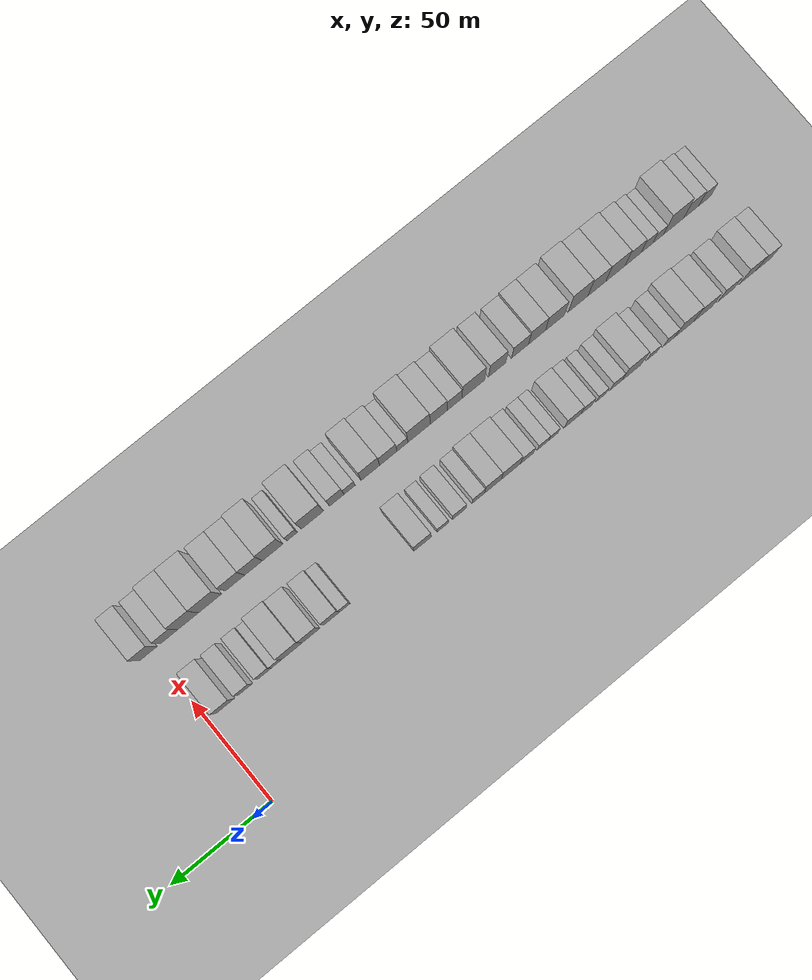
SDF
<sdf version="1.6">
 <world name="default">
  <include><name>ground_plane_1</name><uri>model://HANNAS_ground_plane</uri></include>
  <include>
   <name>ground_plane_2</name>
   <uri>model://HANNAS_ground_plane</uri>
   <pose>100 0 0  0 0 0</pose>
  </include>
  <model name="building_1">
   <static>1</static>
   <pose>50.0000 -286.0324 0 0.000000 0.000000 0.000000</pose>
   <link name="link">
    <pose>0 0 9.00 0 0 0</pose>
    <collision name="collision"><geometry><box><size>20.0000 7.9351 18.0000</size></box></geometry></collision>
    <visual name="visual">
     <cast_shadows>0</cast_shadows>
     <geometry><box><size>20.0000 7.9351 18.0000</size></box></geometry>
     <material>
      <script>
       <uri>model://HANNAS_wall/materials/scripts</uri>
       <uri>model://HANNAS_wall/materials/textures</uri>
       <name>vrc/HANNAS_wall</name>
      </script>
     </material>
    </visual>
   </link>
  </model>
  <model name="building_2">
   <static>1</static>
   <pose>50.0000 -277.5326 0 0.000000 0.000000 0.000000</pose>
   <link name="link">
    <pose>0 0 10.50 0 0 0</pose>
    <collision name="collision"><geometry><box><size>20.0000 9.0645 21.0000</size></box></geometry></collision>
    <visual name="visual">
     <cast_shadows>0</cast_shadows>
     <geometry><box><size>20.0000 9.0645 21.0000</size></box></geometry>
     <material>
      <script>
       <uri>model://HANNAS_wall/materials/scripts</uri>
       <uri>model://HANNAS_wall/materials/textures</uri>
       <name>vrc/HANNAS_wall</name>
      </script>
     </material>
    </visual>
   </link>
  </model>
  <model name="building_3">
   <static>1</static>
   <pose>50.0000 -265.7728 0 0.000000 0.000000 0.000000</pose>
   <link name="link">
    <pose>0 0 9.00 0 0 0</pose>
    <collision name="collision"><geometry><box><size>20.0000 8.4551 18.0000</size></box></geometry></collision>
    <visual name="visual">
     <cast_shadows>0</cast_shadows>
     <geometry><box><size>20.0000 8.4551 18.0000</size></box></geometry>
     <material>
      <script>
       <uri>model://HANNAS_wall/materials/scripts</uri>
       <uri>model://HANNAS_wall/materials/textures</uri>
       <name>vrc/HANNAS_wall</name>
      </script>
     </material>
    </visual>
   </link>
  </model>
  <model name="building_4">
   <static>1</static>
   <pose>50.0000 -253.5943 0 0.000000 0.000000 0.000000</pose>
   <link name="link">
    <pose>0 0 10.50 0 0 0</pose>
    <collision name="collision"><geometry><box><size>20.0000 9.9019 21.0000</size></box></geometry></collision>
    <visual name="visual">
     <cast_shadows>0</cast_shadows>
     <geometry><box><size>20.0000 9.9019 21.0000</size></box></geometry>
     <material>
      <script>
       <uri>model://HANNAS_wall/materials/scripts</uri>
       <uri>model://HANNAS_wall/materials/textures</uri>
       <name>vrc/HANNAS_wall</name>
      </script>
     </material>
    </visual>
   </link>
  </model>
  <model name="building_5">
   <static>1</static>
   <pose>50.0000 -243.7121 0 0.000000 0.000000 0.000000</pose>
   <link name="link">
    <pose>0 0 12.00 0 0 0</pose>
    <collision name="collision"><geometry><box><size>20.0000 9.8626 24.0000</size></box></geometry></collision>
    <visual name="visual">
     <cast_shadows>0</cast_shadows>
     <geometry><box><size>20.0000 9.8626 24.0000</size></box></geometry>
     <material>
      <script>
       <uri>model://HANNAS_wall/materials/scripts</uri>
       <uri>model://HANNAS_wall/materials/textures</uri>
       <name>vrc/HANNAS_wall</name>
      </script>
     </material>
    </visual>
   </link>
  </model>
  <model name="building_6">
   <static>1</static>
   <pose>50.0000 -235.6950 0 0.000000 0.000000 0.000000</pose>
   <link name="link">
    <pose>0 0 7.50 0 0 0</pose>
    <collision name="collision"><geometry><box><size>20.0000 6.1716 15.0000</size></box></geometry></collision>
    <visual name="visual">
     <cast_shadows>0</cast_shadows>
     <geometry><box><size>20.0000 6.1716 15.0000</size></box></geometry>
     <material>
      <script>
       <uri>model://HANNAS_wall/materials/scripts</uri>
       <uri>model://HANNAS_wall/materials/textures</uri>
       <name>vrc/HANNAS_wall</name>
      </script>
     </material>
    </visual>
   </link>
  </model>
  <model name="building_7">
   <static>1</static>
   <pose>50.0000 -226.8750 0 0.000000 0.000000 0.000000</pose>
   <link name="link">
    <pose>0 0 6.00 0 0 0</pose>
    <collision name="collision"><geometry><box><size>20.0000 5.4686 12.0000</size></box></geometry></collision>
    <visual name="visual">
     <cast_shadows>0</cast_shadows>
     <geometry><box><size>20.0000 5.4686 12.0000</size></box></geometry>
     <material>
      <script>
       <uri>model://HANNAS_wall/materials/scripts</uri>
       <uri>model://HANNAS_wall/materials/textures</uri>
       <name>vrc/HANNAS_wall</name>
      </script>
     </material>
    </visual>
   </link>
  </model>
  <model name="building_8">
   <static>1</static>
   <pose>50.0000 -216.0352 0 0.000000 0.000000 0.000000</pose>
   <link name="link">
    <pose>0 0 12.00 0 0 0</pose>
    <collision name="collision"><geometry><box><size>20.0000 10.2110 24.0000</size></box></geometry></collision>
    <visual name="visual">
     <cast_shadows>0</cast_shadows>
     <geometry><box><size>20.0000 10.2110 24.0000</size></box></geometry>
     <material>
      <script>
       <uri>model://HANNAS_wall/materials/scripts</uri>
       <uri>model://HANNAS_wall/materials/textures</uri>
       <name>vrc/HANNAS_wall</name>
      </script>
     </material>
    </visual>
   </link>
  </model>
  <model name="building_9">
   <static>1</static>
   <pose>50.0000 -207.8794 0 0.000000 0.000000 0.000000</pose>
   <link name="link">
    <pose>0 0 7.50 0 0 0</pose>
    <collision name="collision"><geometry><box><size>20.0000 6.1006 15.0000</size></box></geometry></collision>
    <visual name="visual">
     <cast_shadows>0</cast_shadows>
     <geometry><box><size>20.0000 6.1006 15.0000</size></box></geometry>
     <material>
      <script>
       <uri>model://HANNAS_wall/materials/scripts</uri>
       <uri>model://HANNAS_wall/materials/textures</uri>
       <name>vrc/HANNAS_wall</name>
      </script>
     </material>
    </visual>
   </link>
  </model>
  <model name="building_10">
   <static>1</static>
   <pose>50.0000 -200.2772 0 0.000000 0.000000 0.000000</pose>
   <link name="link">
    <pose>0 0 6.00 0 0 0</pose>
    <collision name="collision"><geometry><box><size>20.0000 5.1039 12.0000</size></box></geometry></collision>
    <visual name="visual">
     <cast_shadows>0</cast_shadows>
     <geometry><box><size>20.0000 5.1039 12.0000</size></box></geometry>
     <material>
      <script>
       <uri>model://HANNAS_wall/materials/scripts</uri>
       <uri>model://HANNAS_wall/materials/textures</uri>
       <name>vrc/HANNAS_wall</name>
      </script>
     </material>
    </visual>
   </link>
  </model>
  <model name="building_11">
   <static>1</static>
   <pose>50.0000 -192.6694 0 0.000000 0.000000 0.000000</pose>
   <link name="link">
    <pose>0 0 7.50 0 0 0</pose>
    <collision name="collision"><geometry><box><size>20.0000 6.1117 15.0000</size></box></geometry></collision>
    <visual name="visual">
     <cast_shadows>0</cast_shadows>
     <geometry><box><size>20.0000 6.1117 15.0000</size></box></geometry>
     <material>
      <script>
       <uri>model://HANNAS_wall/materials/scripts</uri>
       <uri>model://HANNAS_wall/materials/textures</uri>
       <name>vrc/HANNAS_wall</name>
      </script>
     </material>
    </visual>
   </link>
  </model>
  <model name="building_12">
   <static>1</static>
   <pose>50.0000 -185.3379 0 0.000000 0.000000 0.000000</pose>
   <link name="link">
    <pose>0 0 9.00 0 0 0</pose>
    <collision name="collision"><geometry><box><size>20.0000 8.5512 18.0000</size></box></geometry></collision>
    <visual name="visual">
     <cast_shadows>0</cast_shadows>
     <geometry><box><size>20.0000 8.5512 18.0000</size></box></geometry>
     <material>
      <script>
       <uri>model://HANNAS_wall/materials/scripts</uri>
       <uri>model://HANNAS_wall/materials/textures</uri>
       <name>vrc/HANNAS_wall</name>
      </script>
     </material>
    </visual>
   </link>
  </model>
  <model name="building_13">
   <static>1</static>
   <pose>50.0000 -175.5962 0 0.000000 0.000000 0.000000</pose>
   <link name="link">
    <pose>0 0 6.00 0 0 0</pose>
    <collision name="collision"><geometry><box><size>20.0000 4.9323 12.0000</size></box></geometry></collision>
    <visual name="visual">
     <cast_shadows>0</cast_shadows>
     <geometry><box><size>20.0000 4.9323 12.0000</size></box></geometry>
     <material>
      <script>
       <uri>model://HANNAS_wall/materials/scripts</uri>
       <uri>model://HANNAS_wall/materials/textures</uri>
       <name>vrc/HANNAS_wall</name>
      </script>
     </material>
    </visual>
   </link>
  </model>
  <model name="building_14">
   <static>1</static>
   <pose>50.0000 -170.1926 0 0.000000 0.000000 0.000000</pose>
   <link name="link">
    <pose>0 0 6.00 0 0 0</pose>
    <collision name="collision"><geometry><box><size>20.0000 5.8748 12.0000</size></box></geometry></collision>
    <visual name="visual">
     <cast_shadows>0</cast_shadows>
     <geometry><box><size>20.0000 5.8748 12.0000</size></box></geometry>
     <material>
      <script>
       <uri>model://HANNAS_wall/materials/scripts</uri>
       <uri>model://HANNAS_wall/materials/textures</uri>
       <name>vrc/HANNAS_wall</name>
      </script>
     </material>
    </visual>
   </link>
  </model>
  <model name="building_15">
   <static>1</static>
   <pose>50.0000 -161.8780 0 0.000000 0.000000 0.000000</pose>
   <link name="link">
    <pose>0 0 7.50 0 0 0</pose>
    <collision name="collision"><geometry><box><size>20.0000 6.7544 15.0000</size></box></geometry></collision>
    <visual name="visual">
     <cast_shadows>0</cast_shadows>
     <geometry><box><size>20.0000 6.7544 15.0000</size></box></geometry>
     <material>
      <script>
       <uri>model://HANNAS_wall/materials/scripts</uri>
       <uri>model://HANNAS_wall/materials/textures</uri>
       <name>vrc/HANNAS_wall</name>
      </script>
     </material>
    </visual>
   </link>
  </model>
  <model name="building_16">
   <static>1</static>
   <pose>50.0000 -153.5488 0 0.000000 0.000000 0.000000</pose>
   <link name="link">
    <pose>0 0 10.50 0 0 0</pose>
    <collision name="collision"><geometry><box><size>20.0000 9.9040 21.0000</size></box></geometry></collision>
    <visual name="visual">
     <cast_shadows>0</cast_shadows>
     <geometry><box><size>20.0000 9.9040 21.0000</size></box></geometry>
     <material>
      <script>
       <uri>model://HANNAS_wall/materials/scripts</uri>
       <uri>model://HANNAS_wall/materials/textures</uri>
       <name>vrc/HANNAS_wall</name>
      </script>
     </material>
    </visual>
   </link>
  </model>
  <model name="building_17">
   <static>1</static>
   <pose>50.0000 -144.3507 0 0.000000 0.000000 0.000000</pose>
   <link name="link">
    <pose>0 0 10.50 0 0 0</pose>
    <collision name="collision"><geometry><box><size>20.0000 8.4921 21.0000</size></box></geometry></collision>
    <visual name="visual">
     <cast_shadows>0</cast_shadows>
     <geometry><box><size>20.0000 8.4921 21.0000</size></box></geometry>
     <material>
      <script>
       <uri>model://HANNAS_wall/materials/scripts</uri>
       <uri>model://HANNAS_wall/materials/textures</uri>
       <name>vrc/HANNAS_wall</name>
      </script>
     </material>
    </visual>
   </link>
  </model>
  <model name="building_18">
   <static>1</static>
   <pose>50.0000 -136.8926 0 0.000000 0.000000 0.000000</pose>
   <link name="link">
    <pose>0 0 7.50 0 0 0</pose>
    <collision name="collision"><geometry><box><size>20.0000 6.4240 15.0000</size></box></geometry></collision>
    <visual name="visual">
     <cast_shadows>0</cast_shadows>
     <geometry><box><size>20.0000 6.4240 15.0000</size></box></geometry>
     <material>
      <script>
       <uri>model://HANNAS_wall/materials/scripts</uri>
       <uri>model://HANNAS_wall/materials/textures</uri>
       <name>vrc/HANNAS_wall</name>
      </script>
     </material>
    </visual>
   </link>
  </model>
  <model name="building_19">
   <static>1</static>
   <pose>50.0000 -127.1403 0 0.000000 0.000000 0.000000</pose>
   <link name="link">
    <pose>0 0 7.50 0 0 0</pose>
    <collision name="collision"><geometry><box><size>20.0000 7.0807 15.0000</size></box></geometry></collision>
    <visual name="visual">
     <cast_shadows>0</cast_shadows>
     <geometry><box><size>20.0000 7.0807 15.0000</size></box></geometry>
     <material>
      <script>
       <uri>model://HANNAS_wall/materials/scripts</uri>
       <uri>model://HANNAS_wall/materials/textures</uri>
       <name>vrc/HANNAS_wall</name>
      </script>
     </material>
    </visual>
   </link>
  </model>
  <model name="building_20">
   <static>1</static>
   <pose>50.0000 -118.7447 0 0.000000 0.000000 0.000000</pose>
   <link name="link">
    <pose>0 0 6.00 0 0 0</pose>
    <collision name="collision"><geometry><box><size>20.0000 5.7105 12.0000</size></box></geometry></collision>
    <visual name="visual">
     <cast_shadows>0</cast_shadows>
     <geometry><box><size>20.0000 5.7105 12.0000</size></box></geometry>
     <material>
      <script>
       <uri>model://HANNAS_wall/materials/scripts</uri>
       <uri>model://HANNAS_wall/materials/textures</uri>
       <name>vrc/HANNAS_wall</name>
      </script>
     </material>
    </visual>
   </link>
  </model>
  <model name="building_21">
   <static>1</static>
   <pose>50.0000 -108.4547 0 0.000000 0.000000 0.000000</pose>
   <link name="link">
    <pose>0 0 9.00 0 0 0</pose>
    <collision name="collision"><geometry><box><size>20.0000 8.8697 18.0000</size></box></geometry></collision>
    <visual name="visual">
     <cast_shadows>0</cast_shadows>
     <geometry><box><size>20.0000 8.8697 18.0000</size></box></geometry>
     <material>
      <script>
       <uri>model://HANNAS_wall/materials/scripts</uri>
       <uri>model://HANNAS_wall/materials/textures</uri>
       <name>vrc/HANNAS_wall</name>
      </script>
     </material>
    </visual>
   </link>
  </model>
  <model name="building_22">
   <static>1</static>
   <pose>50.0000 -69.1038 0 0.000000 0.000000 0.000000</pose>
   <link name="link">
    <pose>0 0 6.00 0 0 0</pose>
    <collision name="collision"><geometry><box><size>20.0000 5.2773 12.0000</size></box></geometry></collision>
    <visual name="visual">
     <cast_shadows>0</cast_shadows>
     <geometry><box><size>20.0000 5.2773 12.0000</size></box></geometry>
     <material>
      <script>
       <uri>model://HANNAS_wall/materials/scripts</uri>
       <uri>model://HANNAS_wall/materials/textures</uri>
       <name>vrc/HANNAS_wall</name>
      </script>
     </material>
    </visual>
   </link>
  </model>
  <model name="building_23">
   <static>1</static>
   <pose>50.0000 -62.4682 0 0.000000 0.000000 0.000000</pose>
   <link name="link">
    <pose>0 0 9.00 0 0 0</pose>
    <collision name="collision"><geometry><box><size>20.0000 7.9938 18.0000</size></box></geometry></collision>
    <visual name="visual">
     <cast_shadows>0</cast_shadows>
     <geometry><box><size>20.0000 7.9938 18.0000</size></box></geometry>
     <material>
      <script>
       <uri>model://HANNAS_wall/materials/scripts</uri>
       <uri>model://HANNAS_wall/materials/textures</uri>
       <name>vrc/HANNAS_wall</name>
      </script>
     </material>
    </visual>
   </link>
  </model>
  <model name="building_24">
   <static>1</static>
   <pose>50.0000 -52.0570 0 0.000000 0.000000 0.000000</pose>
   <link name="link">
    <pose>0 0 10.50 0 0 0</pose>
    <collision name="collision"><geometry><box><size>20.0000 8.8287 21.0000</size></box></geometry></collision>
    <visual name="visual">
     <cast_shadows>0</cast_shadows>
     <geometry><box><size>20.0000 8.8287 21.0000</size></box></geometry>
     <material>
      <script>
       <uri>model://HANNAS_wall/materials/scripts</uri>
       <uri>model://HANNAS_wall/materials/textures</uri>
       <name>vrc/HANNAS_wall</name>
      </script>
     </material>
    </visual>
   </link>
  </model>
  <model name="building_25">
   <static>1</static>
   <pose>50.0000 -42.5791 0 0.000000 0.000000 0.000000</pose>
   <link name="link">
    <pose>0 0 12.00 0 0 0</pose>
    <collision name="collision"><geometry><box><size>20.0000 10.1271 24.0000</size></box></geometry></collision>
    <visual name="visual">
     <cast_shadows>0</cast_shadows>
     <geometry><box><size>20.0000 10.1271 24.0000</size></box></geometry>
     <material>
      <script>
       <uri>model://HANNAS_wall/materials/scripts</uri>
       <uri>model://HANNAS_wall/materials/textures</uri>
       <name>vrc/HANNAS_wall</name>
      </script>
     </material>
    </visual>
   </link>
  </model>
  <model name="building_26">
   <static>1</static>
   <pose>50.0000 -34.9127 0 0.000000 0.000000 0.000000</pose>
   <link name="link">
    <pose>0 0 6.00 0 0 0</pose>
    <collision name="collision"><geometry><box><size>20.0000 5.2056 12.0000</size></box></geometry></collision>
    <visual name="visual">
     <cast_shadows>0</cast_shadows>
     <geometry><box><size>20.0000 5.2056 12.0000</size></box></geometry>
     <material>
      <script>
       <uri>model://HANNAS_wall/materials/scripts</uri>
       <uri>model://HANNAS_wall/materials/textures</uri>
       <name>vrc/HANNAS_wall</name>
      </script>
     </material>
    </visual>
   </link>
  </model>
  <model name="building_27">
   <static>1</static>
   <pose>50.0000 -29.0377 0 0.000000 0.000000 0.000000</pose>
   <link name="link">
    <pose>0 0 7.50 0 0 0</pose>
    <collision name="collision"><geometry><box><size>20.0000 6.5444 15.0000</size></box></geometry></collision>
    <visual name="visual">
     <cast_shadows>0</cast_shadows>
     <geometry><box><size>20.0000 6.5444 15.0000</size></box></geometry>
     <material>
      <script>
       <uri>model://HANNAS_wall/materials/scripts</uri>
       <uri>model://HANNAS_wall/materials/textures</uri>
       <name>vrc/HANNAS_wall</name>
      </script>
     </material>
    </visual>
   </link>
  </model>
  <model name="building_28">
   <static>1</static>
   <pose>50.0000 -19.2700 0 0.000000 0.000000 0.000000</pose>
   <link name="link">
    <pose>0 0 7.50 0 0 0</pose>
    <collision name="collision"><geometry><box><size>20.0000 6.9911 15.0000</size></box></geometry></collision>
    <visual name="visual">
     <cast_shadows>0</cast_shadows>
     <geometry><box><size>20.0000 6.9911 15.0000</size></box></geometry>
     <material>
      <script>
       <uri>model://HANNAS_wall/materials/scripts</uri>
       <uri>model://HANNAS_wall/materials/textures</uri>
       <name>vrc/HANNAS_wall</name>
      </script>
     </material>
    </visual>
   </link>
  </model>
  <model name="building_29">
   <static>1</static>
   <pose>50.0000 -9.3897 0 0.000000 0.000000 0.000000</pose>
   <link name="link">
    <pose>0 0 9.00 0 0 0</pose>
    <collision name="collision"><geometry><box><size>20.0000 8.7695 18.0000</size></box></geometry></collision>
    <visual name="visual">
     <cast_shadows>0</cast_shadows>
     <geometry><box><size>20.0000 8.7695 18.0000</size></box></geometry>
     <material>
      <script>
       <uri>model://HANNAS_wall/materials/scripts</uri>
       <uri>model://HANNAS_wall/materials/textures</uri>
       <name>vrc/HANNAS_wall</name>
      </script>
     </material>
    </visual>
   </link>
  </model>
  <model name="building_63">
   <static>1</static>
   <pose>85.0000 -284.7858 0 0.000000 0.000000 0.000000</pose>
   <link name="link">
    <pose>0 0 7.50 0 0 0</pose>
    <collision name="collision"><geometry><box><size>20.0000 6.4284 15.0000</size></box></geometry></collision>
    <visual name="visual">
     <cast_shadows>0</cast_shadows>
     <geometry><box><size>20.0000 6.4284 15.0000</size></box></geometry>
     <material>
      <script>
       <uri>model://HANNAS_wall/materials/scripts</uri>
       <uri>model://HANNAS_wall/materials/textures</uri>
       <name>vrc/HANNAS_wall</name>
      </script>
     </material>
    </visual>
   </link>
  </model>
  <model name="building_64">
   <static>1</static>
   <pose>85.0000 -277.5835 0 0.000000 0.000000 0.000000</pose>
   <link name="link">
    <pose>0 0 9.00 0 0 0</pose>
    <collision name="collision"><geometry><box><size>20.0000 7.9762 18.0000</size></box></geometry></collision>
    <visual name="visual">
     <cast_shadows>0</cast_shadows>
     <geometry><box><size>20.0000 7.9762 18.0000</size></box></geometry>
     <material>
      <script>
       <uri>model://HANNAS_wall/materials/scripts</uri>
       <uri>model://HANNAS_wall/materials/textures</uri>
       <name>vrc/HANNAS_wall</name>
      </script>
     </material>
    </visual>
   </link>
  </model>
  <model name="building_65">
   <static>1</static>
   <pose>85.0000 -268.2206 0 0.000000 0.000000 0.000000</pose>
   <link name="link">
    <pose>0 0 12.00 0 0 0</pose>
    <collision name="collision"><geometry><box><size>20.0000 10.7495 24.0000</size></box></geometry></collision>
    <visual name="visual">
     <cast_shadows>0</cast_shadows>
     <geometry><box><size>20.0000 10.7495 24.0000</size></box></geometry>
     <material>
      <script>
       <uri>model://HANNAS_wall/materials/scripts</uri>
       <uri>model://HANNAS_wall/materials/textures</uri>
       <name>vrc/HANNAS_wall</name>
      </script>
     </material>
    </visual>
   </link>
  </model>
  <model name="building_66">
   <static>1</static>
   <pose>85.0000 -260.0247 0 0.000000 0.000000 0.000000</pose>
   <link name="link">
    <pose>0 0 6.00 0 0 0</pose>
    <collision name="collision"><geometry><box><size>20.0000 5.6422 12.0000</size></box></geometry></collision>
    <visual name="visual">
     <cast_shadows>0</cast_shadows>
     <geometry><box><size>20.0000 5.6422 12.0000</size></box></geometry>
     <material>
      <script>
       <uri>model://HANNAS_wall/materials/scripts</uri>
       <uri>model://HANNAS_wall/materials/textures</uri>
       <name>vrc/HANNAS_wall</name>
      </script>
     </material>
    </visual>
   </link>
  </model>
  <model name="building_67">
   <static>1</static>
   <pose>85.0000 -254.0826 0 0.000000 0.000000 0.000000</pose>
   <link name="link">
    <pose>0 0 7.50 0 0 0</pose>
    <collision name="collision"><geometry><box><size>20.0000 6.2421 15.0000</size></box></geometry></collision>
    <visual name="visual">
     <cast_shadows>0</cast_shadows>
     <geometry><box><size>20.0000 6.2421 15.0000</size></box></geometry>
     <material>
      <script>
       <uri>model://HANNAS_wall/materials/scripts</uri>
       <uri>model://HANNAS_wall/materials/textures</uri>
       <name>vrc/HANNAS_wall</name>
      </script>
     </material>
    </visual>
   </link>
  </model>
  <model name="building_68">
   <static>1</static>
   <pose>85.0000 -246.7564 0 0.000000 0.000000 0.000000</pose>
   <link name="link">
    <pose>0 0 9.00 0 0 0</pose>
    <collision name="collision"><geometry><box><size>20.0000 8.4102 18.0000</size></box></geometry></collision>
    <visual name="visual">
     <cast_shadows>0</cast_shadows>
     <geometry><box><size>20.0000 8.4102 18.0000</size></box></geometry>
     <material>
      <script>
       <uri>model://HANNAS_wall/materials/scripts</uri>
       <uri>model://HANNAS_wall/materials/textures</uri>
       <name>vrc/HANNAS_wall</name>
      </script>
     </material>
    </visual>
   </link>
  </model>
  <model name="building_69">
   <static>1</static>
   <pose>85.0000 -237.4723 0 0.000000 0.000000 0.000000</pose>
   <link name="link">
    <pose>0 0 10.50 0 0 0</pose>
    <collision name="collision"><geometry><box><size>20.0000 10.1579 21.0000</size></box></geometry></collision>
    <visual name="visual">
     <cast_shadows>0</cast_shadows>
     <geometry><box><size>20.0000 10.1579 21.0000</size></box></geometry>
     <material>
      <script>
       <uri>model://HANNAS_wall/materials/scripts</uri>
       <uri>model://HANNAS_wall/materials/textures</uri>
       <name>vrc/HANNAS_wall</name>
      </script>
     </material>
    </visual>
   </link>
  </model>
  <model name="building_70">
   <static>1</static>
   <pose>85.0000 -227.7130 0 0.000000 0.000000 0.000000</pose>
   <link name="link">
    <pose>0 0 10.50 0 0 0</pose>
    <collision name="collision"><geometry><box><size>20.0000 9.3609 21.0000</size></box></geometry></collision>
    <visual name="visual">
     <cast_shadows>0</cast_shadows>
     <geometry><box><size>20.0000 9.3609 21.0000</size></box></geometry>
     <material>
      <script>
       <uri>model://HANNAS_wall/materials/scripts</uri>
       <uri>model://HANNAS_wall/materials/textures</uri>
       <name>vrc/HANNAS_wall</name>
      </script>
     </material>
    </visual>
   </link>
  </model>
  <model name="building_71">
   <static>1</static>
   <pose>85.0000 -217.8371 0 0.000000 0.000000 0.000000</pose>
   <link name="link">
    <pose>0 0 12.00 0 0 0</pose>
    <collision name="collision"><geometry><box><size>20.0000 10.3909 24.0000</size></box></geometry></collision>
    <visual name="visual">
     <cast_shadows>0</cast_shadows>
     <geometry><box><size>20.0000 10.3909 24.0000</size></box></geometry>
     <material>
      <script>
       <uri>model://HANNAS_wall/materials/scripts</uri>
       <uri>model://HANNAS_wall/materials/textures</uri>
       <name>vrc/HANNAS_wall</name>
      </script>
     </material>
    </visual>
   </link>
  </model>
  <model name="building_72">
   <static>1</static>
   <pose>85.0000 -205.6947 0 0.000000 0.000000 0.000000</pose>
   <link name="link">
    <pose>0 0 10.50 0 0 0</pose>
    <collision name="collision"><geometry><box><size>20.0000 9.8939 21.0000</size></box></geometry></collision>
    <visual name="visual">
     <cast_shadows>0</cast_shadows>
     <geometry><box><size>20.0000 9.8939 21.0000</size></box></geometry>
     <material>
      <script>
       <uri>model://HANNAS_wall/materials/scripts</uri>
       <uri>model://HANNAS_wall/materials/textures</uri>
       <name>vrc/HANNAS_wall</name>
      </script>
     </material>
    </visual>
   </link>
  </model>
  <model name="building_73">
   <static>1</static>
   <pose>85.0000 -196.3677 0 0.000000 0.000000 0.000000</pose>
   <link name="link">
    <pose>0 0 10.50 0 0 0</pose>
    <collision name="collision"><geometry><box><size>20.0000 8.7602 21.0000</size></box></geometry></collision>
    <visual name="visual">
     <cast_shadows>0</cast_shadows>
     <geometry><box><size>20.0000 8.7602 21.0000</size></box></geometry>
     <material>
      <script>
       <uri>model://HANNAS_wall/materials/scripts</uri>
       <uri>model://HANNAS_wall/materials/textures</uri>
       <name>vrc/HANNAS_wall</name>
      </script>
     </material>
    </visual>
   </link>
  </model>
  <model name="building_74">
   <static>1</static>
   <pose>85.0000 -187.5662 0 0.000000 0.000000 0.000000</pose>
   <link name="link">
    <pose>0 0 9.00 0 0 0</pose>
    <collision name="collision"><geometry><box><size>20.0000 8.8428 18.0000</size></box></geometry></collision>
    <visual name="visual">
     <cast_shadows>0</cast_shadows>
     <geometry><box><size>20.0000 8.8428 18.0000</size></box></geometry>
     <material>
      <script>
       <uri>model://HANNAS_wall/materials/scripts</uri>
       <uri>model://HANNAS_wall/materials/textures</uri>
       <name>vrc/HANNAS_wall</name>
      </script>
     </material>
    </visual>
   </link>
  </model>
  <model name="building_75">
   <static>1</static>
   <pose>85.0000 -175.6686 0 0.000000 0.000000 0.000000</pose>
   <link name="link">
    <pose>0 0 10.50 0 0 0</pose>
    <collision name="collision"><geometry><box><size>20.0000 8.9523 21.0000</size></box></geometry></collision>
    <visual name="visual">
     <cast_shadows>0</cast_shadows>
     <geometry><box><size>20.0000 8.9523 21.0000</size></box></geometry>
     <material>
      <script>
       <uri>model://HANNAS_wall/materials/scripts</uri>
       <uri>model://HANNAS_wall/materials/textures</uri>
       <name>vrc/HANNAS_wall</name>
      </script>
     </material>
    </visual>
   </link>
  </model>
  <model name="building_76">
   <static>1</static>
   <pose>85.0000 -163.3056 0 0.000000 0.000000 0.000000</pose>
   <link name="link">
    <pose>0 0 12.00 0 0 0</pose>
    <collision name="collision"><geometry><box><size>20.0000 11.7736 24.0000</size></box></geometry></collision>
    <visual name="visual">
     <cast_shadows>0</cast_shadows>
     <geometry><box><size>20.0000 11.7736 24.0000</size></box></geometry>
     <material>
      <script>
       <uri>model://HANNAS_wall/materials/scripts</uri>
       <uri>model://HANNAS_wall/materials/textures</uri>
       <name>vrc/HANNAS_wall</name>
      </script>
     </material>
    </visual>
   </link>
  </model>
  <model name="building_77">
   <static>1</static>
   <pose>85.0000 -153.6453 0 0.000000 0.000000 0.000000</pose>
   <link name="link">
    <pose>0 0 9.00 0 0 0</pose>
    <collision name="collision"><geometry><box><size>20.0000 7.5472 18.0000</size></box></geometry></collision>
    <visual name="visual">
     <cast_shadows>0</cast_shadows>
     <geometry><box><size>20.0000 7.5472 18.0000</size></box></geometry>
     <material>
      <script>
       <uri>model://HANNAS_wall/materials/scripts</uri>
       <uri>model://HANNAS_wall/materials/textures</uri>
       <name>vrc/HANNAS_wall</name>
      </script>
     </material>
    </visual>
   </link>
  </model>
  <model name="building_78">
   <static>1</static>
   <pose>85.0000 -145.4755 0 0.000000 0.000000 0.000000</pose>
   <link name="link">
    <pose>0 0 10.50 0 0 0</pose>
    <collision name="collision"><geometry><box><size>20.0000 8.7924 21.0000</size></box></geometry></collision>
    <visual name="visual">
     <cast_shadows>0</cast_shadows>
     <geometry><box><size>20.0000 8.7924 21.0000</size></box></geometry>
     <material>
      <script>
       <uri>model://HANNAS_wall/materials/scripts</uri>
       <uri>model://HANNAS_wall/materials/textures</uri>
       <name>vrc/HANNAS_wall</name>
      </script>
     </material>
    </visual>
   </link>
  </model>
  <model name="building_79">
   <static>1</static>
   <pose>85.0000 -135.3537 0 0.000000 0.000000 0.000000</pose>
   <link name="link">
    <pose>0 0 12.00 0 0 0</pose>
    <collision name="collision"><geometry><box><size>20.0000 11.4513 24.0000</size></box></geometry></collision>
    <visual name="visual">
     <cast_shadows>0</cast_shadows>
     <geometry><box><size>20.0000 11.4513 24.0000</size></box></geometry>
     <material>
      <script>
       <uri>model://HANNAS_wall/materials/scripts</uri>
       <uri>model://HANNAS_wall/materials/textures</uri>
       <name>vrc/HANNAS_wall</name>
      </script>
     </material>
    </visual>
   </link>
  </model>
  <model name="building_80">
   <static>1</static>
   <pose>85.0000 -126.8528 0 0.000000 0.000000 0.000000</pose>
   <link name="link">
    <pose>0 0 6.00 0 0 0</pose>
    <collision name="collision"><geometry><box><size>20.0000 5.5505 12.0000</size></box></geometry></collision>
    <visual name="visual">
     <cast_shadows>0</cast_shadows>
     <geometry><box><size>20.0000 5.5505 12.0000</size></box></geometry>
     <material>
      <script>
       <uri>model://HANNAS_wall/materials/scripts</uri>
       <uri>model://HANNAS_wall/materials/textures</uri>
       <name>vrc/HANNAS_wall</name>
      </script>
     </material>
    </visual>
   </link>
  </model>
  <model name="building_81">
   <static>1</static>
   <pose>85.0000 -119.6694 0 0.000000 0.000000 0.000000</pose>
   <link name="link">
    <pose>0 0 9.00 0 0 0</pose>
    <collision name="collision"><geometry><box><size>20.0000 8.8163 18.0000</size></box></geometry></collision>
    <visual name="visual">
     <cast_shadows>0</cast_shadows>
     <geometry><box><size>20.0000 8.8163 18.0000</size></box></geometry>
     <material>
      <script>
       <uri>model://HANNAS_wall/materials/scripts</uri>
       <uri>model://HANNAS_wall/materials/textures</uri>
       <name>vrc/HANNAS_wall</name>
      </script>
     </material>
    </visual>
   </link>
  </model>
  <model name="building_82">
   <static>1</static>
   <pose>85.0000 -110.4917 0 0.000000 0.000000 0.000000</pose>
   <link name="link">
    <pose>0 0 10.50 0 0 0</pose>
    <collision name="collision"><geometry><box><size>20.0000 9.5391 21.0000</size></box></geometry></collision>
    <visual name="visual">
     <cast_shadows>0</cast_shadows>
     <geometry><box><size>20.0000 9.5391 21.0000</size></box></geometry>
     <material>
      <script>
       <uri>model://HANNAS_wall/materials/scripts</uri>
       <uri>model://HANNAS_wall/materials/textures</uri>
       <name>vrc/HANNAS_wall</name>
      </script>
     </material>
    </visual>
   </link>
  </model>
  <model name="building_83">
   <static>1</static>
   <pose>85.0000 -99.8729 0 0.000000 0.000000 0.000000</pose>
   <link name="link">
    <pose>0 0 6.00 0 0 0</pose>
    <collision name="collision"><geometry><box><size>20.0000 5.6985 12.0000</size></box></geometry></collision>
    <visual name="visual">
     <cast_shadows>0</cast_shadows>
     <geometry><box><size>20.0000 5.6985 12.0000</size></box></geometry>
     <material>
      <script>
       <uri>model://HANNAS_wall/materials/scripts</uri>
       <uri>model://HANNAS_wall/materials/textures</uri>
       <name>vrc/HANNAS_wall</name>
      </script>
     </material>
    </visual>
   </link>
  </model>
  <model name="building_84">
   <static>1</static>
   <pose>85.0000 -93.3354 0 0.000000 0.000000 0.000000</pose>
   <link name="link">
    <pose>0 0 9.00 0 0 0</pose>
    <collision name="collision"><geometry><box><size>20.0000 7.3766 18.0000</size></box></geometry></collision>
    <visual name="visual">
     <cast_shadows>0</cast_shadows>
     <geometry><box><size>20.0000 7.3766 18.0000</size></box></geometry>
     <material>
      <script>
       <uri>model://HANNAS_wall/materials/scripts</uri>
       <uri>model://HANNAS_wall/materials/textures</uri>
       <name>vrc/HANNAS_wall</name>
      </script>
     </material>
    </visual>
   </link>
  </model>
  <model name="building_85">
   <static>1</static>
   <pose>85.0000 -81.0165 0 0.000000 0.000000 0.000000</pose>
   <link name="link">
    <pose>0 0 12.00 0 0 0</pose>
    <collision name="collision"><geometry><box><size>20.0000 11.2612 24.0000</size></box></geometry></collision>
    <visual name="visual">
     <cast_shadows>0</cast_shadows>
     <geometry><box><size>20.0000 11.2612 24.0000</size></box></geometry>
     <material>
      <script>
       <uri>model://HANNAS_wall/materials/scripts</uri>
       <uri>model://HANNAS_wall/materials/textures</uri>
       <name>vrc/HANNAS_wall</name>
      </script>
     </material>
    </visual>
   </link>
  </model>
  <model name="building_86">
   <static>1</static>
   <pose>85.0000 -70.7324 0 0.000000 0.000000 0.000000</pose>
   <link name="link">
    <pose>0 0 6.00 0 0 0</pose>
    <collision name="collision"><geometry><box><size>20.0000 5.3070 12.0000</size></box></geometry></collision>
    <visual name="visual">
     <cast_shadows>0</cast_shadows>
     <geometry><box><size>20.0000 5.3070 12.0000</size></box></geometry>
     <material>
      <script>
       <uri>model://HANNAS_wall/materials/scripts</uri>
       <uri>model://HANNAS_wall/materials/textures</uri>
       <name>vrc/HANNAS_wall</name>
      </script>
     </material>
    </visual>
   </link>
  </model>
  <model name="building_87">
   <static>1</static>
   <pose>85.0000 -60.9163 0 0.000000 0.000000 0.000000</pose>
   <link name="link">
    <pose>0 0 12.00 0 0 0</pose>
    <collision name="collision"><geometry><box><size>20.0000 10.3251 24.0000</size></box></geometry></collision>
    <visual name="visual">
     <cast_shadows>0</cast_shadows>
     <geometry><box><size>20.0000 10.3251 24.0000</size></box></geometry>
     <material>
      <script>
       <uri>model://HANNAS_wall/materials/scripts</uri>
       <uri>model://HANNAS_wall/materials/textures</uri>
       <name>vrc/HANNAS_wall</name>
      </script>
     </material>
    </visual>
   </link>
  </model>
  <model name="building_88">
   <static>1</static>
   <pose>85.0000 -51.2588 0 0.000000 0.000000 0.000000</pose>
   <link name="link">
    <pose>0 0 10.50 0 0 0</pose>
    <collision name="collision"><geometry><box><size>20.0000 8.9899 21.0000</size></box></geometry></collision>
    <visual name="visual">
     <cast_shadows>0</cast_shadows>
     <geometry><box><size>20.0000 8.9899 21.0000</size></box></geometry>
     <material>
      <script>
       <uri>model://HANNAS_wall/materials/scripts</uri>
       <uri>model://HANNAS_wall/materials/textures</uri>
       <name>vrc/HANNAS_wall</name>
      </script>
     </material>
    </visual>
   </link>
  </model>
  <model name="building_89">
   <static>1</static>
   <pose>85.0000 -41.9272 0 0.000000 0.000000 0.000000</pose>
   <link name="link">
    <pose>0 0 10.50 0 0 0</pose>
    <collision name="collision"><geometry><box><size>20.0000 9.6734 21.0000</size></box></geometry></collision>
    <visual name="visual">
     <cast_shadows>0</cast_shadows>
     <geometry><box><size>20.0000 9.6734 21.0000</size></box></geometry>
     <material>
      <script>
       <uri>model://HANNAS_wall/materials/scripts</uri>
       <uri>model://HANNAS_wall/materials/textures</uri>
       <name>vrc/HANNAS_wall</name>
      </script>
     </material>
    </visual>
   </link>
  </model>
  <model name="building_90">
   <static>1</static>
   <pose>85.0000 -29.3523 0 0.000000 0.000000 0.000000</pose>
   <link name="link">
    <pose>0 0 12.00 0 0 0</pose>
    <collision name="collision"><geometry><box><size>20.0000 11.4765 24.0000</size></box></geometry></collision>
    <visual name="visual">
     <cast_shadows>0</cast_shadows>
     <geometry><box><size>20.0000 11.4765 24.0000</size></box></geometry>
     <material>
      <script>
       <uri>model://HANNAS_wall/materials/scripts</uri>
       <uri>model://HANNAS_wall/materials/textures</uri>
       <name>vrc/HANNAS_wall</name>
      </script>
     </material>
    </visual>
   </link>
  </model>
  <model name="building_91">
   <static>1</static>
   <pose>85.0000 -18.4306 0 0.000000 0.000000 0.000000</pose>
   <link name="link">
    <pose>0 0 12.00 0 0 0</pose>
    <collision name="collision"><geometry><box><size>20.0000 10.3669 24.0000</size></box></geometry></collision>
    <visual name="visual">
     <cast_shadows>0</cast_shadows>
     <geometry><box><size>20.0000 10.3669 24.0000</size></box></geometry>
     <material>
      <script>
       <uri>model://HANNAS_wall/materials/scripts</uri>
       <uri>model://HANNAS_wall/materials/textures</uri>
       <name>vrc/HANNAS_wall</name>
      </script>
     </material>
    </visual>
   </link>
  </model>
  <model name="building_92">
   <static>1</static>
   <pose>85.0000 -9.0638 0 0.000000 0.000000 0.000000</pose>
   <link name="link">
    <pose>0 0 9.00 0 0 0</pose>
    <collision name="collision"><geometry><box><size>20.0000 8.3666 18.0000</size></box></geometry></collision>
    <visual name="visual">
     <cast_shadows>0</cast_shadows>
     <geometry><box><size>20.0000 8.3666 18.0000</size></box></geometry>
     <material>
      <script>
       <uri>model://HANNAS_wall/materials/scripts</uri>
       <uri>model://HANNAS_wall/materials/textures</uri>
       <name>vrc/HANNAS_wall</name>
      </script>
     </material>
    </visual>
   </link>
  </model>
  <model name="building_93">
   <static>1</static>
   <pose>85.0000 1.3735 0 0.000000 0.000000 0.000000</pose>
   <link name="link">
    <pose>0 0 10.50 0 0 0</pose>
    <collision name="collision"><geometry><box><size>20.0000 8.5080 21.0000</size></box></geometry></collision>
    <visual name="visual">
     <cast_shadows>0</cast_shadows>
     <geometry><box><size>20.0000 8.5080 21.0000</size></box></geometry>
     <material>
      <script>
       <uri>model://HANNAS_wall/materials/scripts</uri>
       <uri>model://HANNAS_wall/materials/textures</uri>
       <name>vrc/HANNAS_wall</name>
      </script>
     </material>
    </visual>
   </link>
  </model>
 </world>
</sdf>
